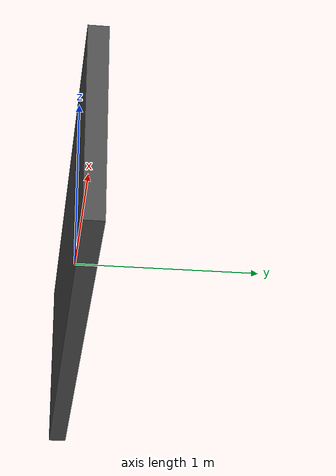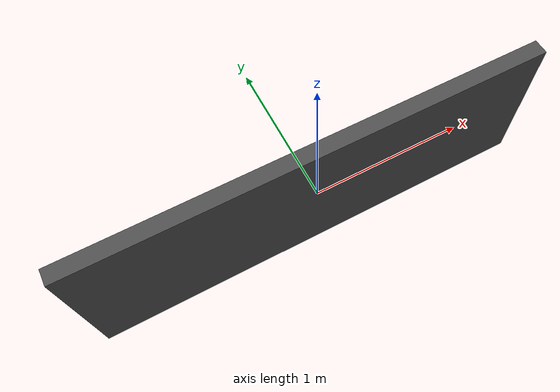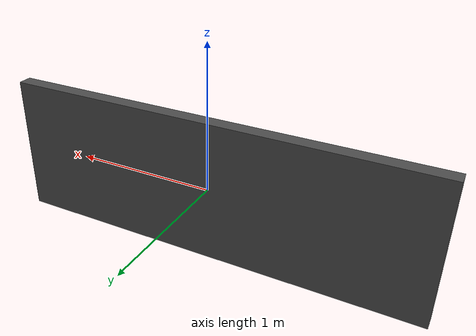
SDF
<?xml version="1.0" ?>
<sdf version="1.6">
  <model name="wall">
    <static>true</static>
    <link name="link">
      <collision name="collision">
        <geometry>
          <box><size>3 0.1 1.0</size></box>
        </geometry>
      </collision>
      <visual name="visual">
        <geometry>
          <box><size>3 0.1 1.0</size></box>
        </geometry>
        <material>
          <ambient>0.3 0.3 0.3 1</ambient> <!-- Gray -->
        </material>
      </visual>
    </link>
  </model>
</sdf>
